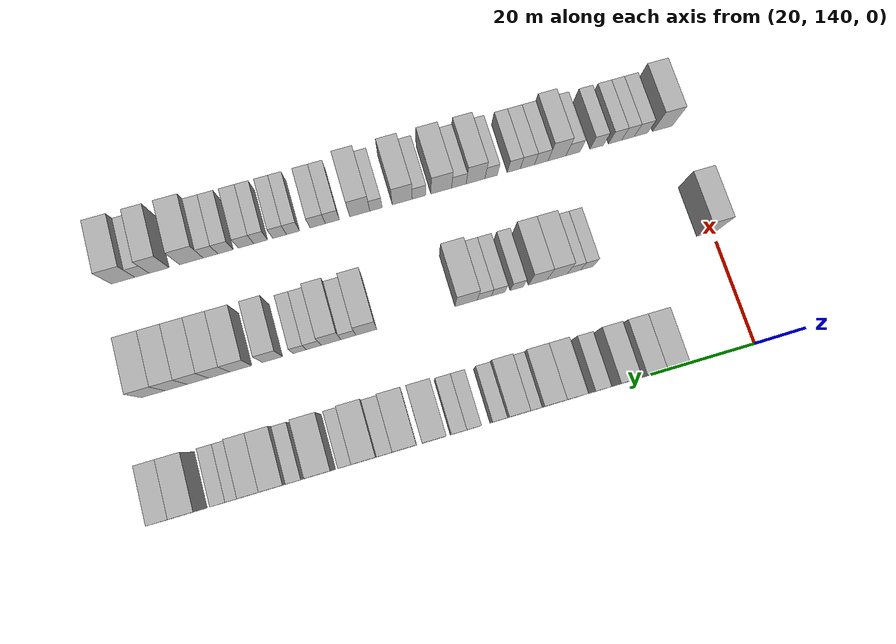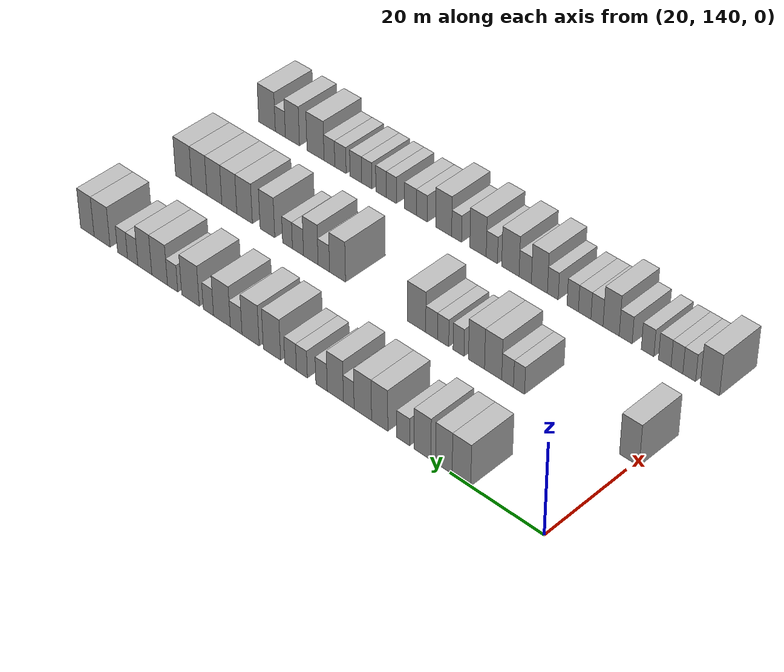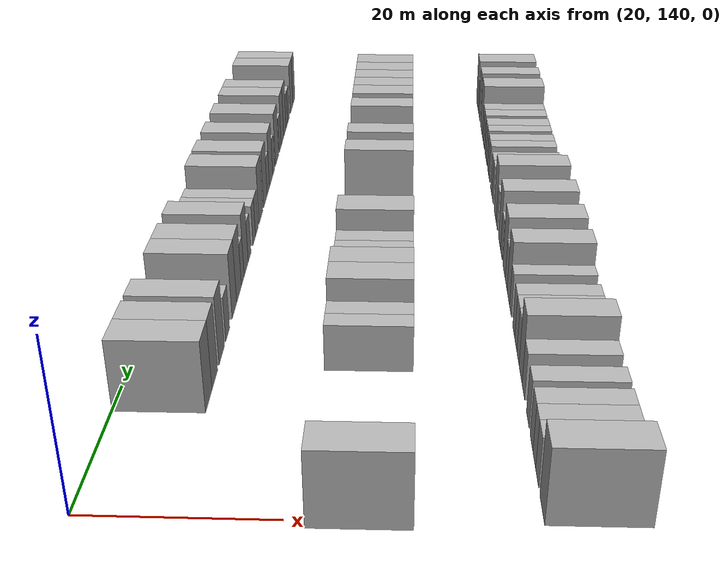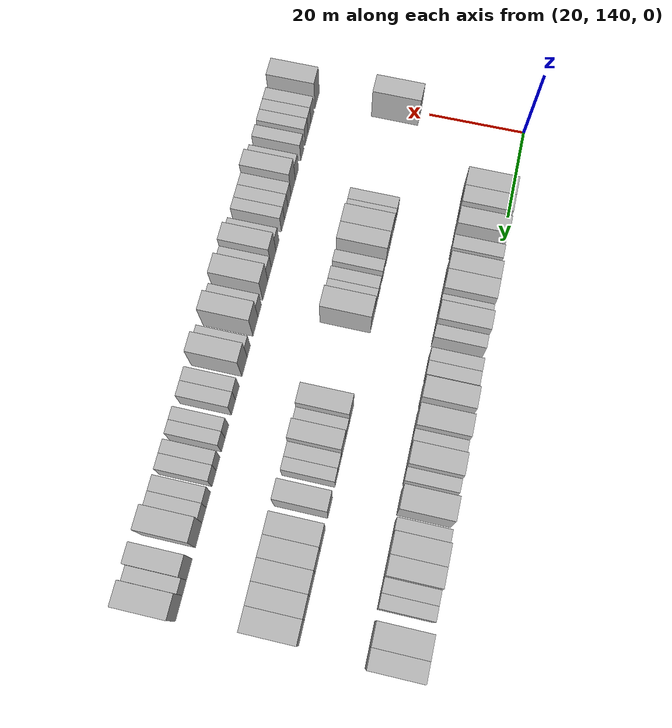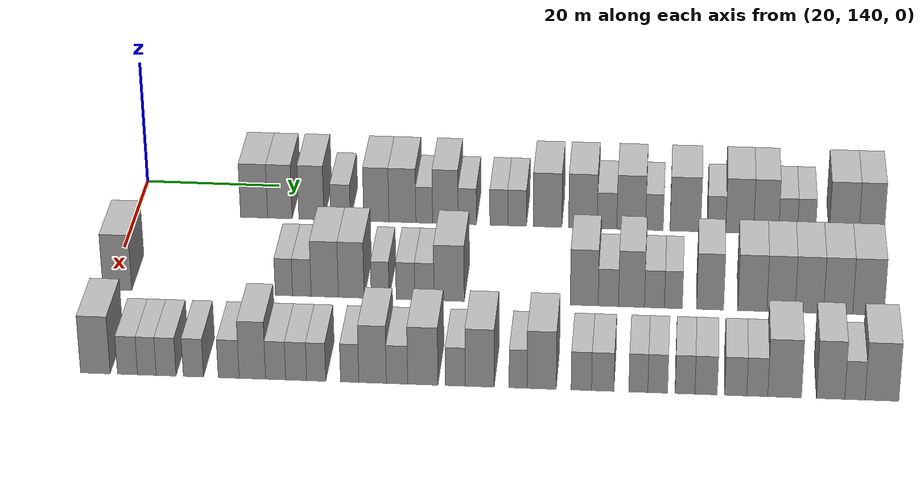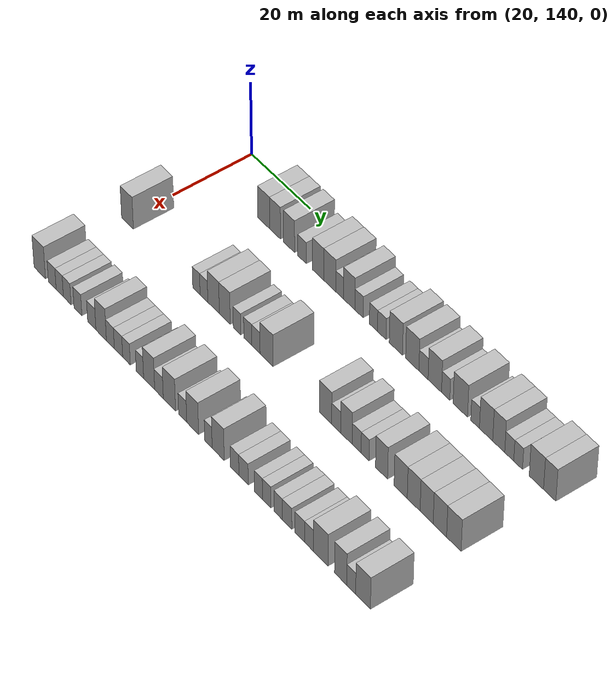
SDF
<sdf version="1.6">
 <world name="default">
  <model name="building_99">
   <static>1</static>
   <pose>25.0000 157.5738 0 0.000000 0.000000 0.000000</pose>
   <link name="link">
    <pose>0 0 4.50 0 0 0</pose>
    <collision name="collision"><geometry><box><size>10.0000 4.0370 9.0000</size></box></geometry></collision>
    <visual name="visual">
     <cast_shadows>0</cast_shadows>
     <geometry><box><size>10.0000 4.0370 9.0000</size></box></geometry>
     <material>
      <script>
       <uri>model://HANNAS_wall/materials/scripts</uri>
       <uri>model://HANNAS_wall/materials/textures</uri>
       <name>vrc/HANNAS_wall</name>
      </script>
     </material>
    </visual>
   </link>
  </model>
  <model name="building_100">
   <static>1</static>
   <pose>25.0000 161.4119 0 0.000000 0.000000 0.000000</pose>
   <link name="link">
    <pose>0 0 4.50 0 0 0</pose>
    <collision name="collision"><geometry><box><size>10.0000 3.6393 9.0000</size></box></geometry></collision>
    <visual name="visual">
     <cast_shadows>0</cast_shadows>
     <geometry><box><size>10.0000 3.6393 9.0000</size></box></geometry>
     <material>
      <script>
       <uri>model://HANNAS_wall/materials/scripts</uri>
       <uri>model://HANNAS_wall/materials/textures</uri>
       <name>vrc/HANNAS_wall</name>
      </script>
     </material>
    </visual>
   </link>
  </model>
  <model name="building_101">
   <static>1</static>
   <pose>25.0000 166.0980 0 0.000000 0.000000 0.000000</pose>
   <link name="link">
    <pose>0 0 4.50 0 0 0</pose>
    <collision name="collision"><geometry><box><size>10.0000 3.7331 9.0000</size></box></geometry></collision>
    <visual name="visual">
     <cast_shadows>0</cast_shadows>
     <geometry><box><size>10.0000 3.7331 9.0000</size></box></geometry>
     <material>
      <script>
       <uri>model://HANNAS_wall/materials/scripts</uri>
       <uri>model://HANNAS_wall/materials/textures</uri>
       <name>vrc/HANNAS_wall</name>
      </script>
     </material>
    </visual>
   </link>
  </model>
  <model name="building_102">
   <static>1</static>
   <pose>25.0000 170.4230 0 0.000000 0.000000 0.000000</pose>
   <link name="link">
    <pose>0 0 3.00 0 0 0</pose>
    <collision name="collision"><geometry><box><size>10.0000 2.9168 6.0000</size></box></geometry></collision>
    <visual name="visual">
     <cast_shadows>0</cast_shadows>
     <geometry><box><size>10.0000 2.9168 6.0000</size></box></geometry>
     <material>
      <script>
       <uri>model://HANNAS_wall/materials/scripts</uri>
       <uri>model://HANNAS_wall/materials/textures</uri>
       <name>vrc/HANNAS_wall</name>
      </script>
     </material>
    </visual>
   </link>
  </model>
  <model name="building_103">
   <static>1</static>
   <pose>25.0000 175.7344 0 0.000000 0.000000 0.000000</pose>
   <link name="link">
    <pose>0 0 4.50 0 0 0</pose>
    <collision name="collision"><geometry><box><size>10.0000 3.7061 9.0000</size></box></geometry></collision>
    <visual name="visual">
     <cast_shadows>0</cast_shadows>
     <geometry><box><size>10.0000 3.7061 9.0000</size></box></geometry>
     <material>
      <script>
       <uri>model://HANNAS_wall/materials/scripts</uri>
       <uri>model://HANNAS_wall/materials/textures</uri>
       <name>vrc/HANNAS_wall</name>
      </script>
     </material>
    </visual>
   </link>
  </model>
  <model name="building_104">
   <static>1</static>
   <pose>25.0000 179.5957 0 0.000000 0.000000 0.000000</pose>
   <link name="link">
    <pose>0 0 4.50 0 0 0</pose>
    <collision name="collision"><geometry><box><size>10.0000 4.0163 9.0000</size></box></geometry></collision>
    <visual name="visual">
     <cast_shadows>0</cast_shadows>
     <geometry><box><size>10.0000 4.0163 9.0000</size></box></geometry>
     <material>
      <script>
       <uri>model://HANNAS_wall/materials/scripts</uri>
       <uri>model://HANNAS_wall/materials/textures</uri>
       <name>vrc/HANNAS_wall</name>
      </script>
     </material>
    </visual>
   </link>
  </model>
  <model name="building_105">
   <static>1</static>
   <pose>25.0000 182.8342 0 0.000000 0.000000 0.000000</pose>
   <link name="link">
    <pose>0 0 3.00 0 0 0</pose>
    <collision name="collision"><geometry><box><size>10.0000 2.4608 6.0000</size></box></geometry></collision>
    <visual name="visual">
     <cast_shadows>0</cast_shadows>
     <geometry><box><size>10.0000 2.4608 6.0000</size></box></geometry>
     <material>
      <script>
       <uri>model://HANNAS_wall/materials/scripts</uri>
       <uri>model://HANNAS_wall/materials/textures</uri>
       <name>vrc/HANNAS_wall</name>
      </script>
     </material>
    </visual>
   </link>
  </model>
  <model name="building_106">
   <static>1</static>
   <pose>25.0000 185.9544 0 0.000000 0.000000 0.000000</pose>
   <link name="link">
    <pose>0 0 4.50 0 0 0</pose>
    <collision name="collision"><geometry><box><size>10.0000 3.7797 9.0000</size></box></geometry></collision>
    <visual name="visual">
     <cast_shadows>0</cast_shadows>
     <geometry><box><size>10.0000 3.7797 9.0000</size></box></geometry>
     <material>
      <script>
       <uri>model://HANNAS_wall/materials/scripts</uri>
       <uri>model://HANNAS_wall/materials/textures</uri>
       <name>vrc/HANNAS_wall</name>
      </script>
     </material>
    </visual>
   </link>
  </model>
  <model name="building_107">
   <static>1</static>
   <pose>25.0000 189.1890 0 0.000000 0.000000 0.000000</pose>
   <link name="link">
    <pose>0 0 3.00 0 0 0</pose>
    <collision name="collision"><geometry><box><size>10.0000 2.6893 6.0000</size></box></geometry></collision>
    <visual name="visual">
     <cast_shadows>0</cast_shadows>
     <geometry><box><size>10.0000 2.6893 6.0000</size></box></geometry>
     <material>
      <script>
       <uri>model://HANNAS_wall/materials/scripts</uri>
       <uri>model://HANNAS_wall/materials/textures</uri>
       <name>vrc/HANNAS_wall</name>
      </script>
     </material>
    </visual>
   </link>
  </model>
  <model name="building_108">
   <static>1</static>
   <pose>25.0000 193.8378 0 0.000000 0.000000 0.000000</pose>
   <link name="link">
    <pose>0 0 3.00 0 0 0</pose>
    <collision name="collision"><geometry><box><size>10.0000 2.6083 6.0000</size></box></geometry></collision>
    <visual name="visual">
     <cast_shadows>0</cast_shadows>
     <geometry><box><size>10.0000 2.6083 6.0000</size></box></geometry>
     <material>
      <script>
       <uri>model://HANNAS_wall/materials/scripts</uri>
       <uri>model://HANNAS_wall/materials/textures</uri>
       <name>vrc/HANNAS_wall</name>
      </script>
     </material>
    </visual>
   </link>
  </model>
  <model name="building_109">
   <static>1</static>
   <pose>25.0000 196.5351 0 0.000000 0.000000 0.000000</pose>
   <link name="link">
    <pose>0 0 3.00 0 0 0</pose>
    <collision name="collision"><geometry><box><size>10.0000 2.7864 6.0000</size></box></geometry></collision>
    <visual name="visual">
     <cast_shadows>0</cast_shadows>
     <geometry><box><size>10.0000 2.7864 6.0000</size></box></geometry>
     <material>
      <script>
       <uri>model://HANNAS_wall/materials/scripts</uri>
       <uri>model://HANNAS_wall/materials/textures</uri>
       <name>vrc/HANNAS_wall</name>
      </script>
     </material>
    </visual>
   </link>
  </model>
  <model name="building_110">
   <static>1</static>
   <pose>25.0000 201.0357 0 0.000000 0.000000 0.000000</pose>
   <link name="link">
    <pose>0 0 4.50 0 0 0</pose>
    <collision name="collision"><geometry><box><size>10.0000 4.2147 9.0000</size></box></geometry></collision>
    <visual name="visual">
     <cast_shadows>0</cast_shadows>
     <geometry><box><size>10.0000 4.2147 9.0000</size></box></geometry>
     <material>
      <script>
       <uri>model://HANNAS_wall/materials/scripts</uri>
       <uri>model://HANNAS_wall/materials/textures</uri>
       <name>vrc/HANNAS_wall</name>
      </script>
     </material>
    </visual>
   </link>
  </model>
  <model name="building_111">
   <static>1</static>
   <pose>25.0000 206.2490 0 0.000000 0.000000 0.000000</pose>
   <link name="link">
    <pose>0 0 4.50 0 0 0</pose>
    <collision name="collision"><geometry><box><size>10.0000 4.2118 9.0000</size></box></geometry></collision>
    <visual name="visual">
     <cast_shadows>0</cast_shadows>
     <geometry><box><size>10.0000 4.2118 9.0000</size></box></geometry>
     <material>
      <script>
       <uri>model://HANNAS_wall/materials/scripts</uri>
       <uri>model://HANNAS_wall/materials/textures</uri>
       <name>vrc/HANNAS_wall</name>
      </script>
     </material>
    </visual>
   </link>
  </model>
  <model name="building_112">
   <static>1</static>
   <pose>25.0000 209.7984 0 0.000000 0.000000 0.000000</pose>
   <link name="link">
    <pose>0 0 3.00 0 0 0</pose>
    <collision name="collision"><geometry><box><size>10.0000 2.8871 6.0000</size></box></geometry></collision>
    <visual name="visual">
     <cast_shadows>0</cast_shadows>
     <geometry><box><size>10.0000 2.8871 6.0000</size></box></geometry>
     <material>
      <script>
       <uri>model://HANNAS_wall/materials/scripts</uri>
       <uri>model://HANNAS_wall/materials/textures</uri>
       <name>vrc/HANNAS_wall</name>
      </script>
     </material>
    </visual>
   </link>
  </model>
  <model name="building_113">
   <static>1</static>
   <pose>25.0000 213.3498 0 0.000000 0.000000 0.000000</pose>
   <link name="link">
    <pose>0 0 4.50 0 0 0</pose>
    <collision name="collision"><geometry><box><size>10.0000 4.2157 9.0000</size></box></geometry></collision>
    <visual name="visual">
     <cast_shadows>0</cast_shadows>
     <geometry><box><size>10.0000 4.2157 9.0000</size></box></geometry>
     <material>
      <script>
       <uri>model://HANNAS_wall/materials/scripts</uri>
       <uri>model://HANNAS_wall/materials/textures</uri>
       <name>vrc/HANNAS_wall</name>
      </script>
     </material>
    </visual>
   </link>
  </model>
  <model name="building_114">
   <static>1</static>
   <pose>25.0000 216.7504 0 0.000000 0.000000 0.000000</pose>
   <link name="link">
    <pose>0 0 3.00 0 0 0</pose>
    <collision name="collision"><geometry><box><size>10.0000 2.5856 6.0000</size></box></geometry></collision>
    <visual name="visual">
     <cast_shadows>0</cast_shadows>
     <geometry><box><size>10.0000 2.5856 6.0000</size></box></geometry>
     <material>
      <script>
       <uri>model://HANNAS_wall/materials/scripts</uri>
       <uri>model://HANNAS_wall/materials/textures</uri>
       <name>vrc/HANNAS_wall</name>
      </script>
     </material>
    </visual>
   </link>
  </model>
  <model name="building_115">
   <static>1</static>
   <pose>25.0000 221.2896 0 0.000000 0.000000 0.000000</pose>
   <link name="link">
    <pose>0 0 4.50 0 0 0</pose>
    <collision name="collision"><geometry><box><size>10.0000 4.4928 9.0000</size></box></geometry></collision>
    <visual name="visual">
     <cast_shadows>0</cast_shadows>
     <geometry><box><size>10.0000 4.4928 9.0000</size></box></geometry>
     <material>
      <script>
       <uri>model://HANNAS_wall/materials/scripts</uri>
       <uri>model://HANNAS_wall/materials/textures</uri>
       <name>vrc/HANNAS_wall</name>
      </script>
     </material>
    </visual>
   </link>
  </model>
  <model name="building_116">
   <static>1</static>
   <pose>25.0000 225.8655 0 0.000000 0.000000 0.000000</pose>
   <link name="link">
    <pose>0 0 3.00 0 0 0</pose>
    <collision name="collision"><geometry><box><size>10.0000 2.6589 6.0000</size></box></geometry></collision>
    <visual name="visual">
     <cast_shadows>0</cast_shadows>
     <geometry><box><size>10.0000 2.6589 6.0000</size></box></geometry>
     <material>
      <script>
       <uri>model://HANNAS_wall/materials/scripts</uri>
       <uri>model://HANNAS_wall/materials/textures</uri>
       <name>vrc/HANNAS_wall</name>
      </script>
     </material>
    </visual>
   </link>
  </model>
  <model name="building_117">
   <static>1</static>
   <pose>25.0000 229.2312 0 0.000000 0.000000 0.000000</pose>
   <link name="link">
    <pose>0 0 4.50 0 0 0</pose>
    <collision name="collision"><geometry><box><size>10.0000 4.0726 9.0000</size></box></geometry></collision>
    <visual name="visual">
     <cast_shadows>0</cast_shadows>
     <geometry><box><size>10.0000 4.0726 9.0000</size></box></geometry>
     <material>
      <script>
       <uri>model://HANNAS_wall/materials/scripts</uri>
       <uri>model://HANNAS_wall/materials/textures</uri>
       <name>vrc/HANNAS_wall</name>
      </script>
     </material>
    </visual>
   </link>
  </model>
  <model name="building_118">
   <static>1</static>
   <pose>25.0000 233.1003 0 0.000000 0.000000 0.000000</pose>
   <link name="link">
    <pose>0 0 4.50 0 0 0</pose>
    <collision name="collision"><geometry><box><size>10.0000 3.6656 9.0000</size></box></geometry></collision>
    <visual name="visual">
     <cast_shadows>0</cast_shadows>
     <geometry><box><size>10.0000 3.6656 9.0000</size></box></geometry>
     <material>
      <script>
       <uri>model://HANNAS_wall/materials/scripts</uri>
       <uri>model://HANNAS_wall/materials/textures</uri>
       <name>vrc/HANNAS_wall</name>
      </script>
     </material>
    </visual>
   </link>
  </model>
  <model name="building_119">
   <static>1</static>
   <pose>25.0000 236.2996 0 0.000000 0.000000 0.000000</pose>
   <link name="link">
    <pose>0 0 3.00 0 0 0</pose>
    <collision name="collision"><geometry><box><size>10.0000 2.7330 6.0000</size></box></geometry></collision>
    <visual name="visual">
     <cast_shadows>0</cast_shadows>
     <geometry><box><size>10.0000 2.7330 6.0000</size></box></geometry>
     <material>
      <script>
       <uri>model://HANNAS_wall/materials/scripts</uri>
       <uri>model://HANNAS_wall/materials/textures</uri>
       <name>vrc/HANNAS_wall</name>
      </script>
     </material>
    </visual>
   </link>
  </model>
  <model name="building_120">
   <static>1</static>
   <pose>25.0000 238.9898 0 0.000000 0.000000 0.000000</pose>
   <link name="link">
    <pose>0 0 3.00 0 0 0</pose>
    <collision name="collision"><geometry><box><size>10.0000 2.6475 6.0000</size></box></geometry></collision>
    <visual name="visual">
     <cast_shadows>0</cast_shadows>
     <geometry><box><size>10.0000 2.6475 6.0000</size></box></geometry>
     <material>
      <script>
       <uri>model://HANNAS_wall/materials/scripts</uri>
       <uri>model://HANNAS_wall/materials/textures</uri>
       <name>vrc/HANNAS_wall</name>
      </script>
     </material>
    </visual>
   </link>
  </model>
  <model name="building_121">
   <static>1</static>
   <pose>25.0000 244.4633 0 0.000000 0.000000 0.000000</pose>
   <link name="link">
    <pose>0 0 4.50 0 0 0</pose>
    <collision name="collision"><geometry><box><size>10.0000 4.2995 9.0000</size></box></geometry></collision>
    <visual name="visual">
     <cast_shadows>0</cast_shadows>
     <geometry><box><size>10.0000 4.2995 9.0000</size></box></geometry>
     <material>
      <script>
       <uri>model://HANNAS_wall/materials/scripts</uri>
       <uri>model://HANNAS_wall/materials/textures</uri>
       <name>vrc/HANNAS_wall</name>
      </script>
     </material>
    </visual>
   </link>
  </model>
  <model name="building_122">
   <static>1</static>
   <pose>25.0000 248.4514 0 0.000000 0.000000 0.000000</pose>
   <link name="link">
    <pose>0 0 4.50 0 0 0</pose>
    <collision name="collision"><geometry><box><size>10.0000 3.6766 9.0000</size></box></geometry></collision>
    <visual name="visual">
     <cast_shadows>0</cast_shadows>
     <geometry><box><size>10.0000 3.6766 9.0000</size></box></geometry>
     <material>
      <script>
       <uri>model://HANNAS_wall/materials/scripts</uri>
       <uri>model://HANNAS_wall/materials/textures</uri>
       <name>vrc/HANNAS_wall</name>
      </script>
     </material>
    </visual>
   </link>
  </model>
  <model name="building_221">
   <static>1</static>
   <pose>47.0000 141.0802 0 0.000000 0.000000 0.000000</pose>
   <link name="link">
    <pose>0 0 4.50 0 0 0</pose>
    <collision name="collision"><geometry><box><size>10.0000 4.1331 9.0000</size></box></geometry></collision>
    <visual name="visual">
     <cast_shadows>0</cast_shadows>
     <geometry><box><size>10.0000 4.1331 9.0000</size></box></geometry>
     <material>
      <script>
       <uri>model://HANNAS_wall/materials/scripts</uri>
       <uri>model://HANNAS_wall/materials/textures</uri>
       <name>vrc/HANNAS_wall</name>
      </script>
     </material>
    </visual>
   </link>
  </model>
  <model name="building_222">
   <static>1</static>
   <pose>47.0000 164.8490 0 0.000000 0.000000 0.000000</pose>
   <link name="link">
    <pose>0 0 3.00 0 0 0</pose>
    <collision name="collision"><geometry><box><size>10.0000 2.4682 6.0000</size></box></geometry></collision>
    <visual name="visual">
     <cast_shadows>0</cast_shadows>
     <geometry><box><size>10.0000 2.4682 6.0000</size></box></geometry>
     <material>
      <script>
       <uri>model://HANNAS_wall/materials/scripts</uri>
       <uri>model://HANNAS_wall/materials/textures</uri>
       <name>vrc/HANNAS_wall</name>
      </script>
     </material>
    </visual>
   </link>
  </model>
  <model name="building_223">
   <static>1</static>
   <pose>47.0000 167.3962 0 0.000000 0.000000 0.000000</pose>
   <link name="link">
    <pose>0 0 3.00 0 0 0</pose>
    <collision name="collision"><geometry><box><size>10.0000 2.6261 6.0000</size></box></geometry></collision>
    <visual name="visual">
     <cast_shadows>0</cast_shadows>
     <geometry><box><size>10.0000 2.6261 6.0000</size></box></geometry>
     <material>
      <script>
       <uri>model://HANNAS_wall/materials/scripts</uri>
       <uri>model://HANNAS_wall/materials/textures</uri>
       <name>vrc/HANNAS_wall</name>
      </script>
     </material>
    </visual>
   </link>
  </model>
  <model name="building_224">
   <static>1</static>
   <pose>47.0000 170.6503 0 0.000000 0.000000 0.000000</pose>
   <link name="link">
    <pose>0 0 4.50 0 0 0</pose>
    <collision name="collision"><geometry><box><size>10.0000 3.8821 9.0000</size></box></geometry></collision>
    <visual name="visual">
     <cast_shadows>0</cast_shadows>
     <geometry><box><size>10.0000 3.8821 9.0000</size></box></geometry>
     <material>
      <script>
       <uri>model://HANNAS_wall/materials/scripts</uri>
       <uri>model://HANNAS_wall/materials/textures</uri>
       <name>vrc/HANNAS_wall</name>
      </script>
     </material>
    </visual>
   </link>
  </model>
  <model name="building_225">
   <static>1</static>
   <pose>47.0000 174.4135 0 0.000000 0.000000 0.000000</pose>
   <link name="link">
    <pose>0 0 4.50 0 0 0</pose>
    <collision name="collision"><geometry><box><size>10.0000 3.6443 9.0000</size></box></geometry></collision>
    <visual name="visual">
     <cast_shadows>0</cast_shadows>
     <geometry><box><size>10.0000 3.6443 9.0000</size></box></geometry>
     <material>
      <script>
       <uri>model://HANNAS_wall/materials/scripts</uri>
       <uri>model://HANNAS_wall/materials/textures</uri>
       <name>vrc/HANNAS_wall</name>
      </script>
     </material>
    </visual>
   </link>
  </model>
  <model name="building_226">
   <static>1</static>
   <pose>47.0000 178.5030 0 0.000000 0.000000 0.000000</pose>
   <link name="link">
    <pose>0 0 3.00 0 0 0</pose>
    <collision name="collision"><geometry><box><size>10.0000 2.5347 6.0000</size></box></geometry></collision>
    <visual name="visual">
     <cast_shadows>0</cast_shadows>
     <geometry><box><size>10.0000 2.5347 6.0000</size></box></geometry>
     <material>
      <script>
       <uri>model://HANNAS_wall/materials/scripts</uri>
       <uri>model://HANNAS_wall/materials/textures</uri>
       <name>vrc/HANNAS_wall</name>
      </script>
     </material>
    </visual>
   </link>
  </model>
  <model name="building_227">
   <static>1</static>
   <pose>47.0000 182.0857 0 0.000000 0.000000 0.000000</pose>
   <link name="link">
    <pose>0 0 3.00 0 0 0</pose>
    <collision name="collision"><geometry><box><size>10.0000 2.6307 6.0000</size></box></geometry></collision>
    <visual name="visual">
     <cast_shadows>0</cast_shadows>
     <geometry><box><size>10.0000 2.6307 6.0000</size></box></geometry>
     <material>
      <script>
       <uri>model://HANNAS_wall/materials/scripts</uri>
       <uri>model://HANNAS_wall/materials/textures</uri>
       <name>vrc/HANNAS_wall</name>
      </script>
     </material>
    </visual>
   </link>
  </model>
  <model name="building_228">
   <static>1</static>
   <pose>47.0000 184.7591 0 0.000000 0.000000 0.000000</pose>
   <link name="link">
    <pose>0 0 3.00 0 0 0</pose>
    <collision name="collision"><geometry><box><size>10.0000 2.7161 6.0000</size></box></geometry></collision>
    <visual name="visual">
     <cast_shadows>0</cast_shadows>
     <geometry><box><size>10.0000 2.7161 6.0000</size></box></geometry>
     <material>
      <script>
       <uri>model://HANNAS_wall/materials/scripts</uri>
       <uri>model://HANNAS_wall/materials/textures</uri>
       <name>vrc/HANNAS_wall</name>
      </script>
     </material>
    </visual>
   </link>
  </model>
  <model name="building_229">
   <static>1</static>
   <pose>47.0000 188.2613 0 0.000000 0.000000 0.000000</pose>
   <link name="link">
    <pose>0 0 4.50 0 0 0</pose>
    <collision name="collision"><geometry><box><size>10.0000 4.2884 9.0000</size></box></geometry></collision>
    <visual name="visual">
     <cast_shadows>0</cast_shadows>
     <geometry><box><size>10.0000 4.2884 9.0000</size></box></geometry>
     <material>
      <script>
       <uri>model://HANNAS_wall/materials/scripts</uri>
       <uri>model://HANNAS_wall/materials/textures</uri>
       <name>vrc/HANNAS_wall</name>
      </script>
     </material>
    </visual>
   </link>
  </model>
  <model name="building_230">
   <static>1</static>
   <pose>47.0000 207.3045 0 0.000000 0.000000 0.000000</pose>
   <link name="link">
    <pose>0 0 4.50 0 0 0</pose>
    <collision name="collision"><geometry><box><size>10.0000 3.9326 9.0000</size></box></geometry></collision>
    <visual name="visual">
     <cast_shadows>0</cast_shadows>
     <geometry><box><size>10.0000 3.9326 9.0000</size></box></geometry>
     <material>
      <script>
       <uri>model://HANNAS_wall/materials/scripts</uri>
       <uri>model://HANNAS_wall/materials/textures</uri>
       <name>vrc/HANNAS_wall</name>
      </script>
     </material>
    </visual>
   </link>
  </model>
  <model name="building_231">
   <static>1</static>
   <pose>47.0000 210.6954 0 0.000000 0.000000 0.000000</pose>
   <link name="link">
    <pose>0 0 3.00 0 0 0</pose>
    <collision name="collision"><geometry><box><size>10.0000 2.8493 6.0000</size></box></geometry></collision>
    <visual name="visual">
     <cast_shadows>0</cast_shadows>
     <geometry><box><size>10.0000 2.8493 6.0000</size></box></geometry>
     <material>
      <script>
       <uri>model://HANNAS_wall/materials/scripts</uri>
       <uri>model://HANNAS_wall/materials/textures</uri>
       <name>vrc/HANNAS_wall</name>
      </script>
     </material>
    </visual>
   </link>
  </model>
  <model name="building_232">
   <static>1</static>
   <pose>47.0000 213.9452 0 0.000000 0.000000 0.000000</pose>
   <link name="link">
    <pose>0 0 4.50 0 0 0</pose>
    <collision name="collision"><geometry><box><size>10.0000 3.6502 9.0000</size></box></geometry></collision>
    <visual name="visual">
     <cast_shadows>0</cast_shadows>
     <geometry><box><size>10.0000 3.6502 9.0000</size></box></geometry>
     <material>
      <script>
       <uri>model://HANNAS_wall/materials/scripts</uri>
       <uri>model://HANNAS_wall/materials/textures</uri>
       <name>vrc/HANNAS_wall</name>
      </script>
     </material>
    </visual>
   </link>
  </model>
  <model name="building_233">
   <static>1</static>
   <pose>47.0000 217.1707 0 0.000000 0.000000 0.000000</pose>
   <link name="link">
    <pose>0 0 3.00 0 0 0</pose>
    <collision name="collision"><geometry><box><size>10.0000 2.8008 6.0000</size></box></geometry></collision>
    <visual name="visual">
     <cast_shadows>0</cast_shadows>
     <geometry><box><size>10.0000 2.8008 6.0000</size></box></geometry>
     <material>
      <script>
       <uri>model://HANNAS_wall/materials/scripts</uri>
       <uri>model://HANNAS_wall/materials/textures</uri>
       <name>vrc/HANNAS_wall</name>
      </script>
     </material>
    </visual>
   </link>
  </model>
  <model name="building_234">
   <static>1</static>
   <pose>47.0000 219.8200 0 0.000000 0.000000 0.000000</pose>
   <link name="link">
    <pose>0 0 3.00 0 0 0</pose>
    <collision name="collision"><geometry><box><size>10.0000 2.4979 6.0000</size></box></geometry></collision>
    <visual name="visual">
     <cast_shadows>0</cast_shadows>
     <geometry><box><size>10.0000 2.4979 6.0000</size></box></geometry>
     <material>
      <script>
       <uri>model://HANNAS_wall/materials/scripts</uri>
       <uri>model://HANNAS_wall/materials/textures</uri>
       <name>vrc/HANNAS_wall</name>
      </script>
     </material>
    </visual>
   </link>
  </model>
  <model name="building_235">
   <static>1</static>
   <pose>47.0000 224.9515 0 0.000000 0.000000 0.000000</pose>
   <link name="link">
    <pose>0 0 4.50 0 0 0</pose>
    <collision name="collision"><geometry><box><size>10.0000 3.7650 9.0000</size></box></geometry></collision>
    <visual name="visual">
     <cast_shadows>0</cast_shadows>
     <geometry><box><size>10.0000 3.7650 9.0000</size></box></geometry>
     <material>
      <script>
       <uri>model://HANNAS_wall/materials/scripts</uri>
       <uri>model://HANNAS_wall/materials/textures</uri>
       <name>vrc/HANNAS_wall</name>
      </script>
     </material>
    </visual>
   </link>
  </model>
  <model name="building_236">
   <static>1</static>
   <pose>47.0000 230.8629 0 0.000000 0.000000 0.000000</pose>
   <link name="link">
    <pose>0 0 4.50 0 0 0</pose>
    <collision name="collision"><geometry><box><size>10.0000 4.0578 9.0000</size></box></geometry></collision>
    <visual name="visual">
     <cast_shadows>0</cast_shadows>
     <geometry><box><size>10.0000 4.0578 9.0000</size></box></geometry>
     <material>
      <script>
       <uri>model://HANNAS_wall/materials/scripts</uri>
       <uri>model://HANNAS_wall/materials/textures</uri>
       <name>vrc/HANNAS_wall</name>
      </script>
     </material>
    </visual>
   </link>
  </model>
  <model name="building_237">
   <static>1</static>
   <pose>47.0000 234.8630 0 0.000000 0.000000 0.000000</pose>
   <link name="link">
    <pose>0 0 4.50 0 0 0</pose>
    <collision name="collision"><geometry><box><size>10.0000 3.9424 9.0000</size></box></geometry></collision>
    <visual name="visual">
     <cast_shadows>0</cast_shadows>
     <geometry><box><size>10.0000 3.9424 9.0000</size></box></geometry>
     <material>
      <script>
       <uri>model://HANNAS_wall/materials/scripts</uri>
       <uri>model://HANNAS_wall/materials/textures</uri>
       <name>vrc/HANNAS_wall</name>
      </script>
     </material>
    </visual>
   </link>
  </model>
  <model name="building_238">
   <static>1</static>
   <pose>47.0000 238.8197 0 0.000000 0.000000 0.000000</pose>
   <link name="link">
    <pose>0 0 4.50 0 0 0</pose>
    <collision name="collision"><geometry><box><size>10.0000 3.9712 9.0000</size></box></geometry></collision>
    <visual name="visual">
     <cast_shadows>0</cast_shadows>
     <geometry><box><size>10.0000 3.9712 9.0000</size></box></geometry>
     <material>
      <script>
       <uri>model://HANNAS_wall/materials/scripts</uri>
       <uri>model://HANNAS_wall/materials/textures</uri>
       <name>vrc/HANNAS_wall</name>
      </script>
     </material>
    </visual>
   </link>
  </model>
  <model name="building_239">
   <static>1</static>
   <pose>47.0000 242.8382 0 0.000000 0.000000 0.000000</pose>
   <link name="link">
    <pose>0 0 4.50 0 0 0</pose>
    <collision name="collision"><geometry><box><size>10.0000 4.0656 9.0000</size></box></geometry></collision>
    <visual name="visual">
     <cast_shadows>0</cast_shadows>
     <geometry><box><size>10.0000 4.0656 9.0000</size></box></geometry>
     <material>
      <script>
       <uri>model://HANNAS_wall/materials/scripts</uri>
       <uri>model://HANNAS_wall/materials/textures</uri>
       <name>vrc/HANNAS_wall</name>
      </script>
     </material>
    </visual>
   </link>
  </model>
  <model name="building_240">
   <static>1</static>
   <pose>47.0000 247.0539 0 0.000000 0.000000 0.000000</pose>
   <link name="link">
    <pose>0 0 4.50 0 0 0</pose>
    <collision name="collision"><geometry><box><size>10.0000 4.3659 9.0000</size></box></geometry></collision>
    <visual name="visual">
     <cast_shadows>0</cast_shadows>
     <geometry><box><size>10.0000 4.3659 9.0000</size></box></geometry>
     <material>
      <script>
       <uri>model://HANNAS_wall/materials/scripts</uri>
       <uri>model://HANNAS_wall/materials/textures</uri>
       <name>vrc/HANNAS_wall</name>
      </script>
     </material>
    </visual>
   </link>
  </model>
  <model name="building_339">
   <static>1</static>
   <pose>69.0000 142.0080 0 0.000000 0.000000 0.000000</pose>
   <link name="link">
    <pose>0 0 4.50 0 0 0</pose>
    <collision name="collision"><geometry><box><size>10.0000 4.0414 9.0000</size></box></geometry></collision>
    <visual name="visual">
     <cast_shadows>0</cast_shadows>
     <geometry><box><size>10.0000 4.0414 9.0000</size></box></geometry>
     <material>
      <script>
       <uri>model://HANNAS_wall/materials/scripts</uri>
       <uri>model://HANNAS_wall/materials/textures</uri>
       <name>vrc/HANNAS_wall</name>
      </script>
     </material>
    </visual>
   </link>
  </model>
  <model name="building_340">
   <static>1</static>
   <pose>69.0000 146.3989 0 0.000000 0.000000 0.000000</pose>
   <link name="link">
    <pose>0 0 3.00 0 0 0</pose>
    <collision name="collision"><geometry><box><size>10.0000 2.7404 6.0000</size></box></geometry></collision>
    <visual name="visual">
     <cast_shadows>0</cast_shadows>
     <geometry><box><size>10.0000 2.7404 6.0000</size></box></geometry>
     <material>
      <script>
       <uri>model://HANNAS_wall/materials/scripts</uri>
       <uri>model://HANNAS_wall/materials/textures</uri>
       <name>vrc/HANNAS_wall</name>
      </script>
     </material>
    </visual>
   </link>
  </model>
  <model name="building_341">
   <static>1</static>
   <pose>69.0000 149.0385 0 0.000000 0.000000 0.000000</pose>
   <link name="link">
    <pose>0 0 3.00 0 0 0</pose>
    <collision name="collision"><geometry><box><size>10.0000 2.5389 6.0000</size></box></geometry></collision>
    <visual name="visual">
     <cast_shadows>0</cast_shadows>
     <geometry><box><size>10.0000 2.5389 6.0000</size></box></geometry>
     <material>
      <script>
       <uri>model://HANNAS_wall/materials/scripts</uri>
       <uri>model://HANNAS_wall/materials/textures</uri>
       <name>vrc/HANNAS_wall</name>
      </script>
     </material>
    </visual>
   </link>
  </model>
  <model name="building_342">
   <static>1</static>
   <pose>69.0000 151.6563 0 0.000000 0.000000 0.000000</pose>
   <link name="link">
    <pose>0 0 3.00 0 0 0</pose>
    <collision name="collision"><geometry><box><size>10.0000 2.6966 6.0000</size></box></geometry></collision>
    <visual name="visual">
     <cast_shadows>0</cast_shadows>
     <geometry><box><size>10.0000 2.6966 6.0000</size></box></geometry>
     <material>
      <script>
       <uri>model://HANNAS_wall/materials/scripts</uri>
       <uri>model://HANNAS_wall/materials/textures</uri>
       <name>vrc/HANNAS_wall</name>
      </script>
     </material>
    </visual>
   </link>
  </model>
  <model name="building_343">
   <static>1</static>
   <pose>69.0000 155.3784 0 0.000000 0.000000 0.000000</pose>
   <link name="link">
    <pose>0 0 3.00 0 0 0</pose>
    <collision name="collision"><geometry><box><size>10.0000 2.7477 6.0000</size></box></geometry></collision>
    <visual name="visual">
     <cast_shadows>0</cast_shadows>
     <geometry><box><size>10.0000 2.7477 6.0000</size></box></geometry>
     <material>
      <script>
       <uri>model://HANNAS_wall/materials/scripts</uri>
       <uri>model://HANNAS_wall/materials/textures</uri>
       <name>vrc/HANNAS_wall</name>
      </script>
     </material>
    </visual>
   </link>
  </model>
  <model name="building_344">
   <static>1</static>
   <pose>69.0000 160.1771 0 0.000000 0.000000 0.000000</pose>
   <link name="link">
    <pose>0 0 3.00 0 0 0</pose>
    <collision name="collision"><geometry><box><size>10.0000 2.8495 6.0000</size></box></geometry></collision>
    <visual name="visual">
     <cast_shadows>0</cast_shadows>
     <geometry><box><size>10.0000 2.8495 6.0000</size></box></geometry>
     <material>
      <script>
       <uri>model://HANNAS_wall/materials/scripts</uri>
       <uri>model://HANNAS_wall/materials/textures</uri>
       <name>vrc/HANNAS_wall</name>
      </script>
     </material>
    </visual>
   </link>
  </model>
  <model name="building_345">
   <static>1</static>
   <pose>69.0000 163.4025 0 0.000000 0.000000 0.000000</pose>
   <link name="link">
    <pose>0 0 4.50 0 0 0</pose>
    <collision name="collision"><geometry><box><size>10.0000 3.6014 9.0000</size></box></geometry></collision>
    <visual name="visual">
     <cast_shadows>0</cast_shadows>
     <geometry><box><size>10.0000 3.6014 9.0000</size></box></geometry>
     <material>
      <script>
       <uri>model://HANNAS_wall/materials/scripts</uri>
       <uri>model://HANNAS_wall/materials/textures</uri>
       <name>vrc/HANNAS_wall</name>
      </script>
     </material>
    </visual>
   </link>
  </model>
  <model name="building_346">
   <static>1</static>
   <pose>69.0000 166.5585 0 0.000000 0.000000 0.000000</pose>
   <link name="link">
    <pose>0 0 3.00 0 0 0</pose>
    <collision name="collision"><geometry><box><size>10.0000 2.7105 6.0000</size></box></geometry></collision>
    <visual name="visual">
     <cast_shadows>0</cast_shadows>
     <geometry><box><size>10.0000 2.7105 6.0000</size></box></geometry>
     <material>
      <script>
       <uri>model://HANNAS_wall/materials/scripts</uri>
       <uri>model://HANNAS_wall/materials/textures</uri>
       <name>vrc/HANNAS_wall</name>
      </script>
     </material>
    </visual>
   </link>
  </model>
  <model name="building_347">
   <static>1</static>
   <pose>69.0000 169.3353 0 0.000000 0.000000 0.000000</pose>
   <link name="link">
    <pose>0 0 3.00 0 0 0</pose>
    <collision name="collision"><geometry><box><size>10.0000 2.8430 6.0000</size></box></geometry></collision>
    <visual name="visual">
     <cast_shadows>0</cast_shadows>
     <geometry><box><size>10.0000 2.8430 6.0000</size></box></geometry>
     <material>
      <script>
       <uri>model://HANNAS_wall/materials/scripts</uri>
       <uri>model://HANNAS_wall/materials/textures</uri>
       <name>vrc/HANNAS_wall</name>
      </script>
     </material>
    </visual>
   </link>
  </model>
  <model name="building_348">
   <static>1</static>
   <pose>69.0000 172.0501 0 0.000000 0.000000 0.000000</pose>
   <link name="link">
    <pose>0 0 3.00 0 0 0</pose>
    <collision name="collision"><geometry><box><size>10.0000 2.5866 6.0000</size></box></geometry></collision>
    <visual name="visual">
     <cast_shadows>0</cast_shadows>
     <geometry><box><size>10.0000 2.5866 6.0000</size></box></geometry>
     <material>
      <script>
       <uri>model://HANNAS_wall/materials/scripts</uri>
       <uri>model://HANNAS_wall/materials/textures</uri>
       <name>vrc/HANNAS_wall</name>
      </script>
     </material>
    </visual>
   </link>
  </model>
  <model name="building_349">
   <static>1</static>
   <pose>69.0000 176.5861 0 0.000000 0.000000 0.000000</pose>
   <link name="link">
    <pose>0 0 3.00 0 0 0</pose>
    <collision name="collision"><geometry><box><size>10.0000 2.4854 6.0000</size></box></geometry></collision>
    <visual name="visual">
     <cast_shadows>0</cast_shadows>
     <geometry><box><size>10.0000 2.4854 6.0000</size></box></geometry>
     <material>
      <script>
       <uri>model://HANNAS_wall/materials/scripts</uri>
       <uri>model://HANNAS_wall/materials/textures</uri>
       <name>vrc/HANNAS_wall</name>
      </script>
     </material>
    </visual>
   </link>
  </model>
  <model name="building_350">
   <static>1</static>
   <pose>69.0000 179.6881 0 0.000000 0.000000 0.000000</pose>
   <link name="link">
    <pose>0 0 4.50 0 0 0</pose>
    <collision name="collision"><geometry><box><size>10.0000 3.7187 9.0000</size></box></geometry></collision>
    <visual name="visual">
     <cast_shadows>0</cast_shadows>
     <geometry><box><size>10.0000 3.7187 9.0000</size></box></geometry>
     <material>
      <script>
       <uri>model://HANNAS_wall/materials/scripts</uri>
       <uri>model://HANNAS_wall/materials/textures</uri>
       <name>vrc/HANNAS_wall</name>
      </script>
     </material>
    </visual>
   </link>
  </model>
  <model name="building_351">
   <static>1</static>
   <pose>69.0000 182.9796 0 0.000000 0.000000 0.000000</pose>
   <link name="link">
    <pose>0 0 3.00 0 0 0</pose>
    <collision name="collision"><geometry><box><size>10.0000 2.8643 6.0000</size></box></geometry></collision>
    <visual name="visual">
     <cast_shadows>0</cast_shadows>
     <geometry><box><size>10.0000 2.8643 6.0000</size></box></geometry>
     <material>
      <script>
       <uri>model://HANNAS_wall/materials/scripts</uri>
       <uri>model://HANNAS_wall/materials/textures</uri>
       <name>vrc/HANNAS_wall</name>
      </script>
     </material>
    </visual>
   </link>
  </model>
  <model name="building_352">
   <static>1</static>
   <pose>69.0000 186.4562 0 0.000000 0.000000 0.000000</pose>
   <link name="link">
    <pose>0 0 4.50 0 0 0</pose>
    <collision name="collision"><geometry><box><size>10.0000 4.0888 9.0000</size></box></geometry></collision>
    <visual name="visual">
     <cast_shadows>0</cast_shadows>
     <geometry><box><size>10.0000 4.0888 9.0000</size></box></geometry>
     <material>
      <script>
       <uri>model://HANNAS_wall/materials/scripts</uri>
       <uri>model://HANNAS_wall/materials/textures</uri>
       <name>vrc/HANNAS_wall</name>
      </script>
     </material>
    </visual>
   </link>
  </model>
  <model name="building_353">
   <static>1</static>
   <pose>69.0000 190.8377 0 0.000000 0.000000 0.000000</pose>
   <link name="link">
    <pose>0 0 3.00 0 0 0</pose>
    <collision name="collision"><geometry><box><size>10.0000 2.6742 6.0000</size></box></geometry></collision>
    <visual name="visual">
     <cast_shadows>0</cast_shadows>
     <geometry><box><size>10.0000 2.6742 6.0000</size></box></geometry>
     <material>
      <script>
       <uri>model://HANNAS_wall/materials/scripts</uri>
       <uri>model://HANNAS_wall/materials/textures</uri>
       <name>vrc/HANNAS_wall</name>
      </script>
     </material>
    </visual>
   </link>
  </model>
  <model name="building_354">
   <static>1</static>
   <pose>69.0000 194.1311 0 0.000000 0.000000 0.000000</pose>
   <link name="link">
    <pose>0 0 4.50 0 0 0</pose>
    <collision name="collision"><geometry><box><size>10.0000 3.9127 9.0000</size></box></geometry></collision>
    <visual name="visual">
     <cast_shadows>0</cast_shadows>
     <geometry><box><size>10.0000 3.9127 9.0000</size></box></geometry>
     <material>
      <script>
       <uri>model://HANNAS_wall/materials/scripts</uri>
       <uri>model://HANNAS_wall/materials/textures</uri>
       <name>vrc/HANNAS_wall</name>
      </script>
     </material>
    </visual>
   </link>
  </model>
  <model name="building_355">
   <static>1</static>
   <pose>69.0000 199.2891 0 0.000000 0.000000 0.000000</pose>
   <link name="link">
    <pose>0 0 3.00 0 0 0</pose>
    <collision name="collision"><geometry><box><size>10.0000 2.4032 6.0000</size></box></geometry></collision>
    <visual name="visual">
     <cast_shadows>0</cast_shadows>
     <geometry><box><size>10.0000 2.4032 6.0000</size></box></geometry>
     <material>
      <script>
       <uri>model://HANNAS_wall/materials/scripts</uri>
       <uri>model://HANNAS_wall/materials/textures</uri>
       <name>vrc/HANNAS_wall</name>
      </script>
     </material>
    </visual>
   </link>
  </model>
  <model name="building_356">
   <static>1</static>
   <pose>69.0000 202.4523 0 0.000000 0.000000 0.000000</pose>
   <link name="link">
    <pose>0 0 4.50 0 0 0</pose>
    <collision name="collision"><geometry><box><size>10.0000 3.9231 9.0000</size></box></geometry></collision>
    <visual name="visual">
     <cast_shadows>0</cast_shadows>
     <geometry><box><size>10.0000 3.9231 9.0000</size></box></geometry>
     <material>
      <script>
       <uri>model://HANNAS_wall/materials/scripts</uri>
       <uri>model://HANNAS_wall/materials/textures</uri>
       <name>vrc/HANNAS_wall</name>
      </script>
     </material>
    </visual>
   </link>
  </model>
  <model name="building_357">
   <static>1</static>
   <pose>69.0000 207.7853 0 0.000000 0.000000 0.000000</pose>
   <link name="link">
    <pose>0 0 3.00 0 0 0</pose>
    <collision name="collision"><geometry><box><size>10.0000 2.7430 6.0000</size></box></geometry></collision>
    <visual name="visual">
     <cast_shadows>0</cast_shadows>
     <geometry><box><size>10.0000 2.7430 6.0000</size></box></geometry>
     <material>
      <script>
       <uri>model://HANNAS_wall/materials/scripts</uri>
       <uri>model://HANNAS_wall/materials/textures</uri>
       <name>vrc/HANNAS_wall</name>
      </script>
     </material>
    </visual>
   </link>
  </model>
  <model name="building_358">
   <static>1</static>
   <pose>69.0000 210.6528 0 0.000000 0.000000 0.000000</pose>
   <link name="link">
    <pose>0 0 3.00 0 0 0</pose>
    <collision name="collision"><geometry><box><size>10.0000 2.9920 6.0000</size></box></geometry></collision>
    <visual name="visual">
     <cast_shadows>0</cast_shadows>
     <geometry><box><size>10.0000 2.9920 6.0000</size></box></geometry>
     <material>
      <script>
       <uri>model://HANNAS_wall/materials/scripts</uri>
       <uri>model://HANNAS_wall/materials/textures</uri>
       <name>vrc/HANNAS_wall</name>
      </script>
     </material>
    </visual>
   </link>
  </model>
  <model name="building_359">
   <static>1</static>
   <pose>69.0000 215.4129 0 0.000000 0.000000 0.000000</pose>
   <link name="link">
    <pose>0 0 3.00 0 0 0</pose>
    <collision name="collision"><geometry><box><size>10.0000 2.5283 6.0000</size></box></geometry></collision>
    <visual name="visual">
     <cast_shadows>0</cast_shadows>
     <geometry><box><size>10.0000 2.5283 6.0000</size></box></geometry>
     <material>
      <script>
       <uri>model://HANNAS_wall/materials/scripts</uri>
       <uri>model://HANNAS_wall/materials/textures</uri>
       <name>vrc/HANNAS_wall</name>
      </script>
     </material>
    </visual>
   </link>
  </model>
  <model name="building_360">
   <static>1</static>
   <pose>69.0000 218.0035 0 0.000000 0.000000 0.000000</pose>
   <link name="link">
    <pose>0 0 3.00 0 0 0</pose>
    <collision name="collision"><geometry><box><size>10.0000 2.6527 6.0000</size></box></geometry></collision>
    <visual name="visual">
     <cast_shadows>0</cast_shadows>
     <geometry><box><size>10.0000 2.6527 6.0000</size></box></geometry>
     <material>
      <script>
       <uri>model://HANNAS_wall/materials/scripts</uri>
       <uri>model://HANNAS_wall/materials/textures</uri>
       <name>vrc/HANNAS_wall</name>
      </script>
     </material>
    </visual>
   </link>
  </model>
  <model name="building_361">
   <static>1</static>
   <pose>69.0000 221.6444 0 0.000000 0.000000 0.000000</pose>
   <link name="link">
    <pose>0 0 3.00 0 0 0</pose>
    <collision name="collision"><geometry><box><size>10.0000 2.6291 6.0000</size></box></geometry></collision>
    <visual name="visual">
     <cast_shadows>0</cast_shadows>
     <geometry><box><size>10.0000 2.6291 6.0000</size></box></geometry>
     <material>
      <script>
       <uri>model://HANNAS_wall/materials/scripts</uri>
       <uri>model://HANNAS_wall/materials/textures</uri>
       <name>vrc/HANNAS_wall</name>
      </script>
     </material>
    </visual>
   </link>
  </model>
  <model name="building_362">
   <static>1</static>
   <pose>69.0000 224.4490 0 0.000000 0.000000 0.000000</pose>
   <link name="link">
    <pose>0 0 3.00 0 0 0</pose>
    <collision name="collision"><geometry><box><size>10.0000 2.9802 6.0000</size></box></geometry></collision>
    <visual name="visual">
     <cast_shadows>0</cast_shadows>
     <geometry><box><size>10.0000 2.9802 6.0000</size></box></geometry>
     <material>
      <script>
       <uri>model://HANNAS_wall/materials/scripts</uri>
       <uri>model://HANNAS_wall/materials/textures</uri>
       <name>vrc/HANNAS_wall</name>
      </script>
     </material>
    </visual>
   </link>
  </model>
  <model name="building_363">
   <static>1</static>
   <pose>69.0000 228.4075 0 0.000000 0.000000 0.000000</pose>
   <link name="link">
    <pose>0 0 3.00 0 0 0</pose>
    <collision name="collision"><geometry><box><size>10.0000 2.9368 6.0000</size></box></geometry></collision>
    <visual name="visual">
     <cast_shadows>0</cast_shadows>
     <geometry><box><size>10.0000 2.9368 6.0000</size></box></geometry>
     <material>
      <script>
       <uri>model://HANNAS_wall/materials/scripts</uri>
       <uri>model://HANNAS_wall/materials/textures</uri>
       <name>vrc/HANNAS_wall</name>
      </script>
     </material>
    </visual>
   </link>
  </model>
  <model name="building_364">
   <static>1</static>
   <pose>69.0000 231.2823 0 0.000000 0.000000 0.000000</pose>
   <link name="link">
    <pose>0 0 3.00 0 0 0</pose>
    <collision name="collision"><geometry><box><size>10.0000 2.8129 6.0000</size></box></geometry></collision>
    <visual name="visual">
     <cast_shadows>0</cast_shadows>
     <geometry><box><size>10.0000 2.8129 6.0000</size></box></geometry>
     <material>
      <script>
       <uri>model://HANNAS_wall/materials/scripts</uri>
       <uri>model://HANNAS_wall/materials/textures</uri>
       <name>vrc/HANNAS_wall</name>
      </script>
     </material>
    </visual>
   </link>
  </model>
  <model name="building_365">
   <static>1</static>
   <pose>69.0000 234.9295 0 0.000000 0.000000 0.000000</pose>
   <link name="link">
    <pose>0 0 4.50 0 0 0</pose>
    <collision name="collision"><geometry><box><size>10.0000 4.4814 9.0000</size></box></geometry></collision>
    <visual name="visual">
     <cast_shadows>0</cast_shadows>
     <geometry><box><size>10.0000 4.4814 9.0000</size></box></geometry>
     <material>
      <script>
       <uri>model://HANNAS_wall/materials/scripts</uri>
       <uri>model://HANNAS_wall/materials/textures</uri>
       <name>vrc/HANNAS_wall</name>
      </script>
     </material>
    </visual>
   </link>
  </model>
  <model name="building_366">
   <static>1</static>
   <pose>69.0000 241.0547 0 0.000000 0.000000 0.000000</pose>
   <link name="link">
    <pose>0 0 4.50 0 0 0</pose>
    <collision name="collision"><geometry><box><size>10.0000 3.7690 9.0000</size></box></geometry></collision>
    <visual name="visual">
     <cast_shadows>0</cast_shadows>
     <geometry><box><size>10.0000 3.7690 9.0000</size></box></geometry>
     <material>
      <script>
       <uri>model://HANNAS_wall/materials/scripts</uri>
       <uri>model://HANNAS_wall/materials/textures</uri>
       <name>vrc/HANNAS_wall</name>
      </script>
     </material>
    </visual>
   </link>
  </model>
  <model name="building_367">
   <static>1</static>
   <pose>69.0000 244.2864 0 0.000000 0.000000 0.000000</pose>
   <link name="link">
    <pose>0 0 3.00 0 0 0</pose>
    <collision name="collision"><geometry><box><size>10.0000 2.6944 6.0000</size></box></geometry></collision>
    <visual name="visual">
     <cast_shadows>0</cast_shadows>
     <geometry><box><size>10.0000 2.6944 6.0000</size></box></geometry>
     <material>
      <script>
       <uri>model://HANNAS_wall/materials/scripts</uri>
       <uri>model://HANNAS_wall/materials/textures</uri>
       <name>vrc/HANNAS_wall</name>
      </script>
     </material>
    </visual>
   </link>
  </model>
  <model name="building_368">
   <static>1</static>
   <pose>69.0000 247.8710 0 0.000000 0.000000 0.000000</pose>
   <link name="link">
    <pose>0 0 4.50 0 0 0</pose>
    <collision name="collision"><geometry><box><size>10.0000 4.4748 9.0000</size></box></geometry></collision>
    <visual name="visual">
     <cast_shadows>0</cast_shadows>
     <geometry><box><size>10.0000 4.4748 9.0000</size></box></geometry>
     <material>
      <script>
       <uri>model://HANNAS_wall/materials/scripts</uri>
       <uri>model://HANNAS_wall/materials/textures</uri>
       <name>vrc/HANNAS_wall</name>
      </script>
     </material>
    </visual>
   </link>
  </model>
 </world>
</sdf>
